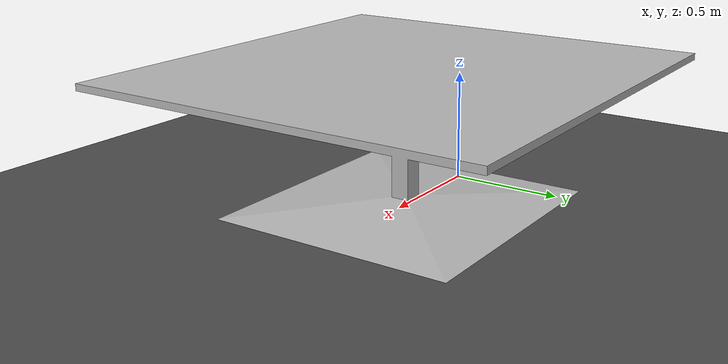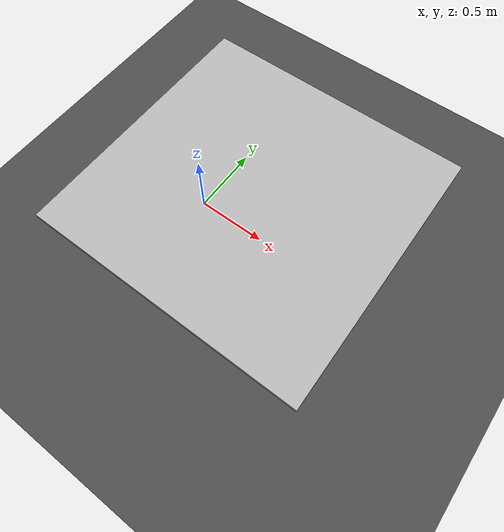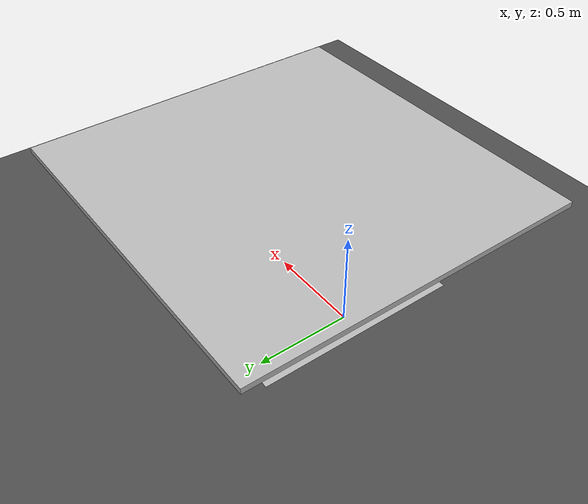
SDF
<sdf version="1.6">
 <world name="default">
  <light name="sun" type="directional">
   <cast_shadows>false</cast_shadows>
   <pose>2.45 -10.2 100 0 -0 0</pose>
   <diffuse>0.7 0.7 0.7 1</diffuse>
   <specular>0.2 0.2 0.2 1</specular>
   <attenuation>
    <range>1000</range>
    <constant>0.9</constant>
    <linear>0.01</linear>
    <quadratic>0.001</quadratic>
   </attenuation>
   <direction>-0.5 0.1 -0.9</direction>
  </light>
  <model name="ground_plane">
   <static>1</static>
   <link name="link">
    <collision name="collision">
     <geometry><plane><normal>0 0 1</normal><size>100 100</size></plane></geometry>
     <surface><friction><ode><mu>100</mu><mu2>50</mu2></ode></friction></surface>
    </collision>
    <visual name="visual">
     <cast_shadows>0</cast_shadows>
     <geometry><plane><normal>0 0 1</normal><size>100 100</size></plane></geometry>
     <material>
      <script><uri>file://media/materials/scripts/gazebo.material</uri><name>Gazebo/DarkGrey</name></script>
     </material>
    </visual>
   </link>
  </model>
  <gravity>0 0 -9.8</gravity>
  <magnetic_field>6e-06 2.3e-05 -4.2e-05</magnetic_field>
  <atmosphere type="adiabatic"/>
  <physics name="default_physics" default="0" type="ode">
   <max_step_size>0.001</max_step_size>
   <real_time_factor>1</real_time_factor>
   <real_time_update_rate>1000</real_time_update_rate>
  </physics>
  <scene><ambient>0.4 0.4 0.4 1</ambient><background>0.7 0.7 0.7 1</background><shadows>1</shadows></scene>
  <spherical_coordinates>
   <surface_model>EARTH_WGS84</surface_model>
   <latitude_deg>0</latitude_deg>
   <longitude_deg>0</longitude_deg>
   <elevation>0</elevation>
   <heading_deg>0</heading_deg>
  </spherical_coordinates>
  <model name="short_table">
   <link name="link_0">
    <pose>-0.05 0 0 0 -0 0</pose>
    <inertial>
     <mass>1</mass>
     <inertia>
      <ixx>0.166667</ixx>
      <ixy>0</ixy>
      <ixz>0</ixz>
      <iyy>0.166667</iyy>
      <iyz>0</iyz>
      <izz>0.166667</izz>
     </inertia>
    </inertial>
    <visual name="visual">
     <geometry><mesh><uri>model://short_table/meshes/short_table.dae</uri><scale>3.5 2 1</scale></mesh></geometry>
     <material>
      <lighting>1</lighting>
      <script>
       <uri>model://short_table/materials/scripts</uri>
       <uri>model://short_table/materials/textures</uri>
       <name>Short_Table/Image</name>
      </script>
     </material>
    </visual>
    <collision name="collision">
     <geometry><box><size>2 2 1.22</size></box></geometry>
     <surface>
      <friction>
       <ode><mu>100</mu><mu2>100</mu2><fdir1>0 0 0</fdir1><slip1>0</slip1><slip2>0</slip2></ode>
       <torsional>
        <coefficient>1</coefficient>
        <patch_radius>0</patch_radius>
        <surface_radius>0</surface_radius>
        <use_patch_radius>1</use_patch_radius>
        <ode><slip>0</slip></ode>
       </torsional>
      </friction>
      <bounce><restitution_coefficient>0</restitution_coefficient><threshold>1e+06</threshold></bounce>
      <contact>
       <collide_without_contact>0</collide_without_contact>
       <collide_without_contact_bitmask>1</collide_without_contact_bitmask>
       <collide_bitmask>1</collide_bitmask>
       <ode>
        <soft_cfm>0</soft_cfm>
        <soft_erp>0.2</soft_erp>
        <kp>1e+13</kp>
        <kd>1</kd>
        <max_vel>0.01</max_vel>
        <min_depth>0.001</min_depth>
       </ode>
       <bullet>
        <split_impulse>1</split_impulse>
        <split_impulse_penetration_threshold>-0.01</split_impulse_penetration_threshold>
        <soft_cfm>0</soft_cfm>
        <soft_erp>0.2</soft_erp>
        <kp>1e+13</kp>
        <kd>1</kd>
       </bullet>
      </contact>
     </surface>
    </collision>
   </link>
   <static>1</static>
   <pose>0.5 0 0 0 -0 0</pose>
  </model>
 </world>
</sdf>
